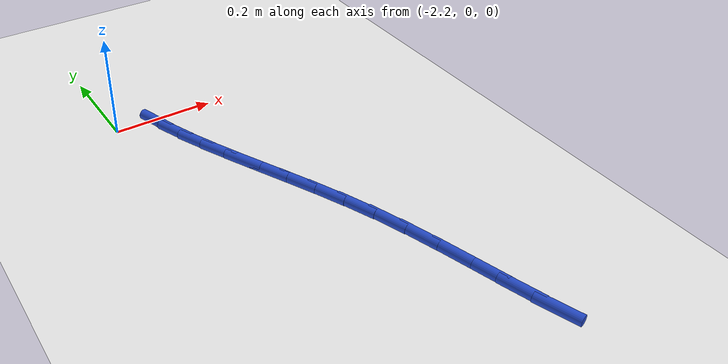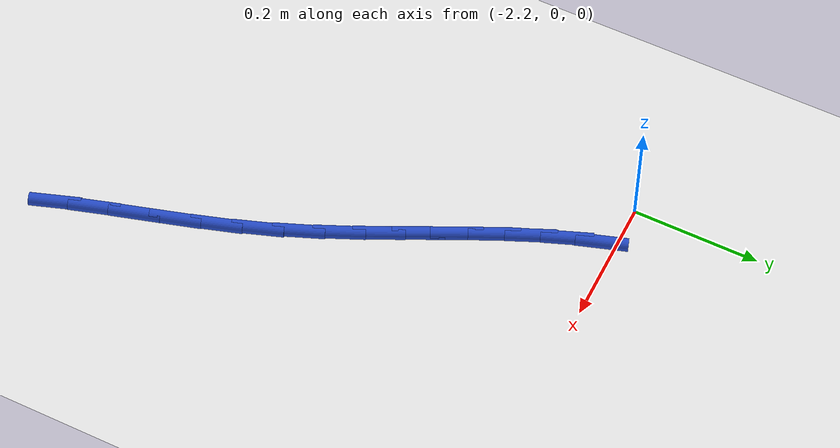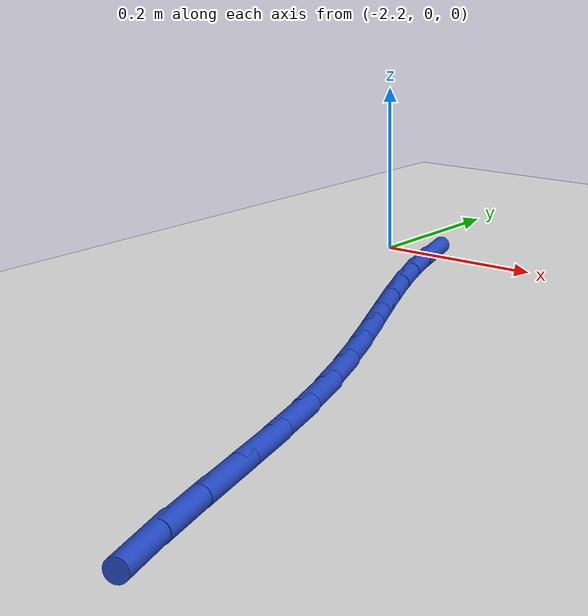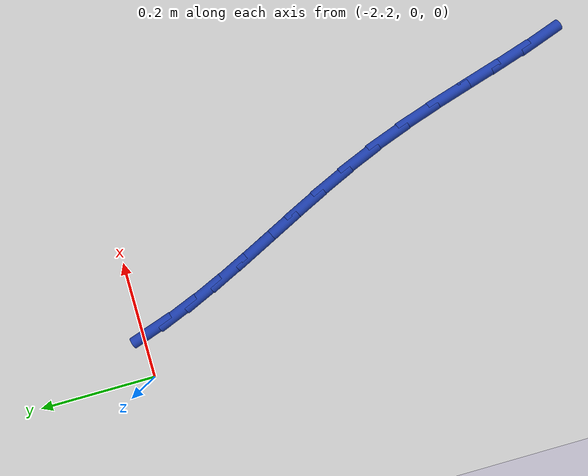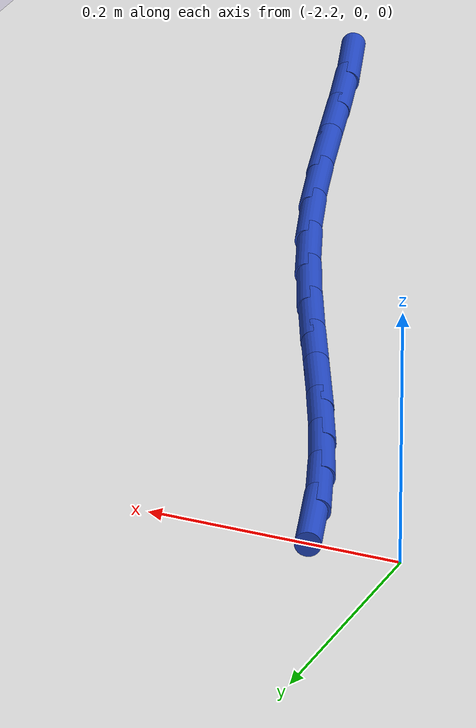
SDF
<sdf version="1.6">
 <world name="default">
  <model name="ground_plane">
   <static>1</static>
   <link name="link">
    <collision name="collision">
     <geometry><plane><normal>0 0 1</normal><size>100 100</size></plane></geometry>
     <surface><friction><ode><mu>100</mu><mu2>50</mu2></ode></friction></surface>
    </collision>
    <visual name="visual">
     <cast_shadows>0</cast_shadows>
     <geometry><plane><normal>0 0 1</normal><size>100 100</size></plane></geometry>
     <material>
      <script><uri>file://media/materials/scripts/gazebo.material</uri><name>Gazebo/WhiteGlow</name></script>
     </material>
    </visual>
   </link>
  </model>
  <model name="line">
   <link name="link_60">
    <pose>-2.1224349697479648 -0.019889287062724463 0.01 0 1.57 -1.253611947041445</pose>
    <collision name="collision">
     <geometry><cylinder><radius>0.01</radius><length>0.08</length></cylinder></geometry>
    </collision>
    <visual name="visual">
     <material>
      <script><name>Gazebo/Blue</name><uri>file://media/materials/scripts/gazebo.material</uri></script>
     </material>
     <geometry><cylinder><radius>0.01</radius><length>0.08</length></cylinder></geometry>
    </visual>
   </link>
   <link name="link_61">
    <pose>-2.1060412267042343 -0.06982948516123827 0.01 0 1.57 -1.1971933367390837</pose>
    <collision name="collision">
     <geometry><cylinder><radius>0.01</radius><length>0.08</length></cylinder></geometry>
    </collision>
    <visual name="visual">
     <material>
      <script><name>Gazebo/Blue</name><uri>file://media/materials/scripts/gazebo.material</uri></script>
     </material>
     <geometry><cylinder><radius>0.01</radius><length>0.08</length></cylinder></geometry>
    </visual>
   </link>
   <link name="link_62">
    <pose>-2.086402897587245 -0.1199254748459728 0.01 0 1.57 -1.156510871972684</pose>
    <collision name="collision">
     <geometry><cylinder><radius>0.01</radius><length>0.08</length></cylinder></geometry>
    </collision>
    <visual name="visual">
     <material>
      <script><name>Gazebo/Blue</name><uri>file://media/materials/scripts/gazebo.material</uri></script>
     </material>
     <geometry><cylinder><radius>0.01</radius><length>0.08</length></cylinder></geometry>
    </visual>
   </link>
   <link name="link_63">
    <pose>-2.064211955942424 -0.17038974161128598 0.01 0 1.57 -1.1304664335181938</pose>
    <collision name="collision">
     <geometry><cylinder><radius>0.01</radius><length>0.08</length></cylinder></geometry>
    </collision>
    <visual name="visual">
     <material>
      <script><name>Gazebo/Blue</name><uri>file://media/materials/scripts/gazebo.material</uri></script>
     </material>
     <geometry><cylinder><radius>0.01</radius><length>0.08</length></cylinder></geometry>
    </visual>
   </link>
   <link name="link_64">
    <pose>-2.0401603753151982 -0.22143477095153372 0.01 0 1.57 -1.1179925128579253</pose>
    <collision name="collision">
     <geometry><cylinder><radius>0.01</radius><length>0.08</length></cylinder></geometry>
    </collision>
    <visual name="visual">
     <material>
      <script><name>Gazebo/Blue</name><uri>file://media/materials/scripts/gazebo.material</uri></script>
     </material>
     <geometry><cylinder><radius>0.01</radius><length>0.08</length></cylinder></geometry>
    </visual>
   </link>
   <link name="link_65">
    <pose>-2.0149401292509945 -0.27327304836107413 0.01 0 1.57 -1.1181855684424649</pose>
    <collision name="collision">
     <geometry><cylinder><radius>0.01</radius><length>0.08</length></cylinder></geometry>
    </collision>
    <visual name="visual">
     <material>
      <script><name>Gazebo/Blue</name><uri>file://media/materials/scripts/gazebo.material</uri></script>
     </material>
     <geometry><cylinder><radius>0.01</radius><length>0.08</length></cylinder></geometry>
    </visual>
   </link>
   <link name="link_66">
    <pose>-1.9892431912952389 -0.32611705933426516 0.01 0 1.57 -1.130338987603573</pose>
    <collision name="collision">
     <geometry><cylinder><radius>0.01</radius><length>0.08</length></cylinder></geometry>
    </collision>
    <visual name="visual">
     <material>
      <script><name>Gazebo/Blue</name><uri>file://media/materials/scripts/gazebo.material</uri></script>
     </material>
     <geometry><cylinder><radius>0.01</radius><length>0.08</length></cylinder></geometry>
    </visual>
   </link>
   <link name="link_67">
    <pose>-1.9637615349933593 -0.38017928936546275 0.01 0 1.57 -1.1539139451532603</pose>
    <collision name="collision">
     <geometry><cylinder><radius>0.01</radius><length>0.08</length></cylinder></geometry>
    </collision>
    <visual name="visual">
     <material>
      <script><name>Gazebo/Blue</name><uri>file://media/materials/scripts/gazebo.material</uri></script>
     </material>
     <geometry><cylinder><radius>0.01</radius><length>0.08</length></cylinder></geometry>
    </visual>
   </link>
   <link name="link_68">
    <pose>-1.9391871338907811 -0.4356722239490247 0.01 0 1.57 -1.1884698185108356</pose>
    <collision name="collision">
     <geometry><cylinder><radius>0.01</radius><length>0.08</length></cylinder></geometry>
    </collision>
    <visual name="visual">
     <material>
      <script><name>Gazebo/Blue</name><uri>file://media/materials/scripts/gazebo.material</uri></script>
     </material>
     <geometry><cylinder><radius>0.01</radius><length>0.08</length></cylinder></geometry>
    </visual>
   </link>
   <link name="link_69">
    <pose>-1.9162119615329316 -0.49280834857930866 0.01 0 1.57 -1.2315994321015449</pose>
    <collision name="collision">
     <geometry><cylinder><radius>0.01</radius><length>0.08</length></cylinder></geometry>
    </collision>
    <visual name="visual">
     <material>
      <script><name>Gazebo/Blue</name><uri>file://media/materials/scripts/gazebo.material</uri></script>
     </material>
     <geometry><cylinder><radius>0.01</radius><length>0.08</length></cylinder></geometry>
    </visual>
   </link>
   <link name="link_70">
    <pose>-1.8954260501477769 -0.5517197309127861 0.01 0 1.57 -1.2660730576582417</pose>
    <collision name="collision">
     <geometry><cylinder><radius>0.01</radius><length>0.08</length></cylinder></geometry>
    </collision>
    <visual name="visual">
     <material>
      <script><name>Gazebo/Blue</name><uri>file://media/materials/scripts/gazebo.material</uri></script>
     </material>
     <geometry><cylinder><radius>0.01</radius><length>0.08</length></cylinder></geometry>
    </visual>
   </link>
   <link name="link_71">
    <pose>-1.8765204533781485 -0.6118292667419154 0.01 0 1.57 -1.2840018521142824</pose>
    <collision name="collision">
     <geometry><cylinder><radius>0.01</radius><length>0.08</length></cylinder></geometry>
    </collision>
    <visual name="visual">
     <material>
      <script><name>Gazebo/Blue</name><uri>file://media/materials/scripts/gazebo.material</uri></script>
     </material>
     <geometry><cylinder><radius>0.01</radius><length>0.08</length></cylinder></geometry>
    </visual>
   </link>
   <link name="link_72">
    <pose>-1.8587183348365934 -0.6721907502471555 0.01 0 1.57 -1.285805847908032</pose>
    <collision name="collision">
     <geometry><cylinder><radius>0.01</radius><length>0.08</length></cylinder></geometry>
    </collision>
    <visual name="visual">
     <material>
      <script><name>Gazebo/Blue</name><uri>file://media/materials/scripts/gazebo.material</uri></script>
     </material>
     <geometry><cylinder><radius>0.01</radius><length>0.08</length></cylinder></geometry>
    </visual>
   </link>
   <link name="link_73">
    <pose>-1.841238839188298 -0.7318548052059785 0.01 0 1.57 -1.2709396501249366</pose>
    <collision name="collision">
     <geometry><cylinder><radius>0.01</radius><length>0.08</length></cylinder></geometry>
    </collision>
    <visual name="visual">
     <material>
      <script><name>Gazebo/Blue</name><uri>file://media/materials/scripts/gazebo.material</uri></script>
     </material>
     <geometry><cylinder><radius>0.01</radius><length>0.08</length></cylinder></geometry>
    </visual>
   </link>
   <link name="link_74">
    <pose>-1.8233011110984503 -0.7898720553958584 0.01 0 1.57 -1.2376712730310304</pose>
    <collision name="collision">
     <geometry><cylinder><radius>0.01</radius><length>0.08</length></cylinder></geometry>
    </collision>
    <visual name="visual">
     <material>
      <script><name>Gazebo/Blue</name><uri>file://media/materials/scripts/gazebo.material</uri></script>
     </material>
     <geometry><cylinder><radius>0.01</radius><length>0.08</length></cylinder></geometry>
    </visual>
   </link>
  </model>
 </world>
</sdf>
